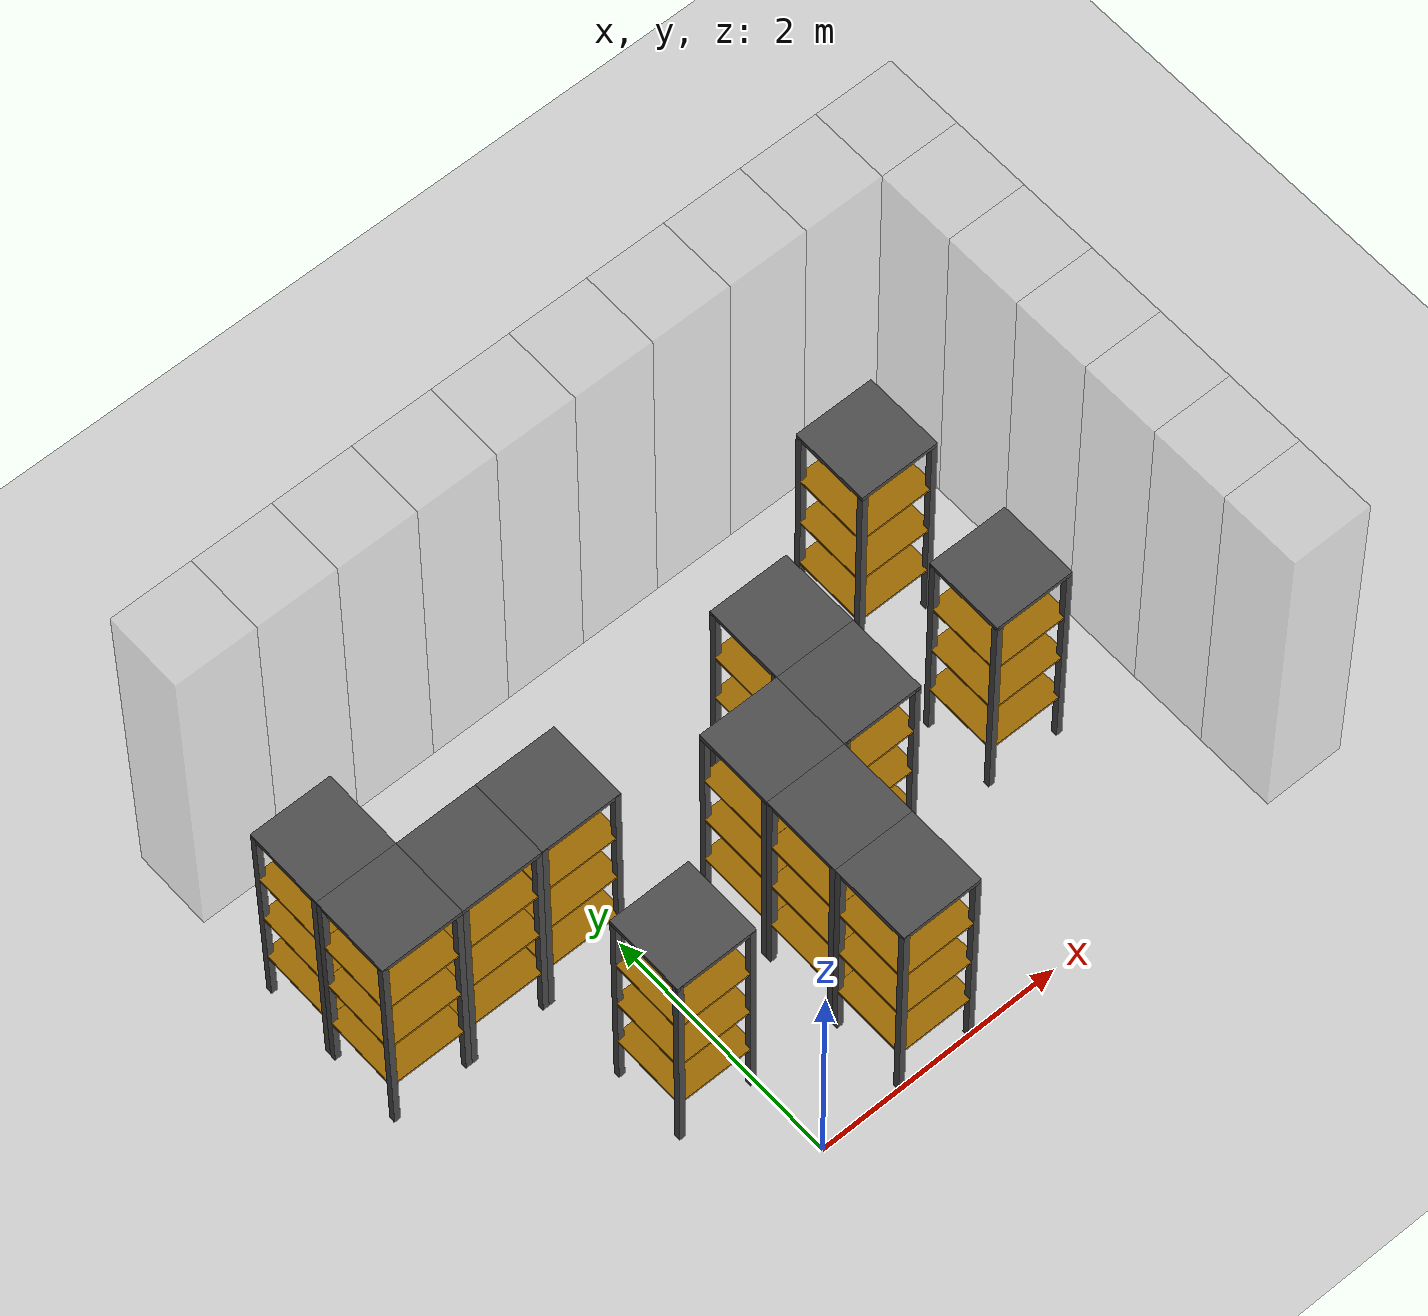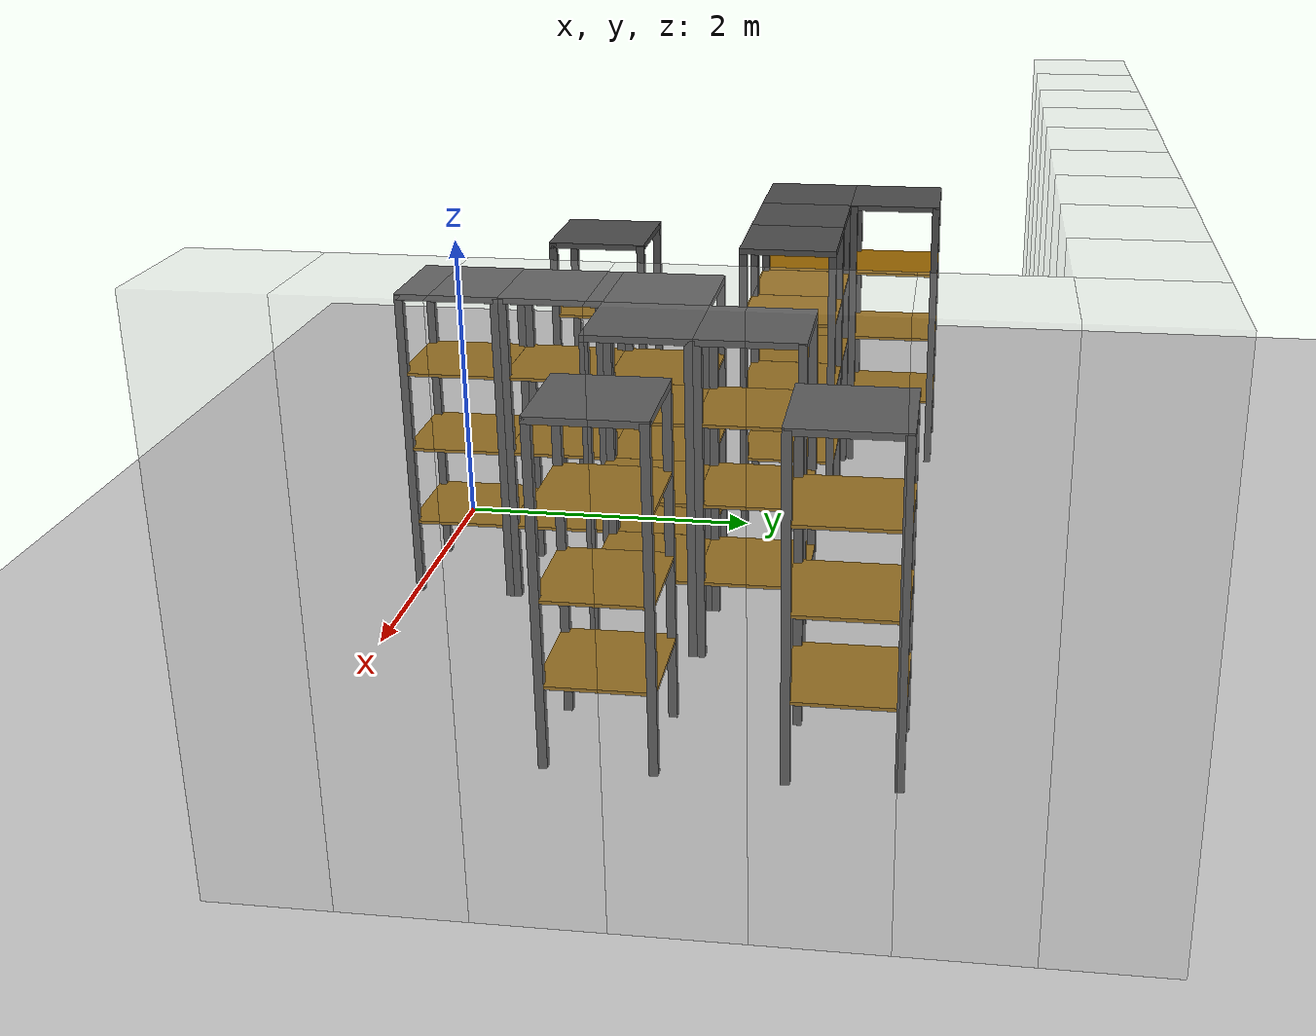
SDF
<sdf version="1.6">
 <world name="default">
  <model name="ground_plane">
   <static>1</static>
   <link name="link">
    <collision name="collision">
     <geometry><plane><normal>0 0 1</normal><size>100 100</size></plane></geometry>
     <surface><friction><ode><mu>100</mu><mu2>50</mu2></ode></friction></surface>
    </collision>
    <visual name="visual">
     <cast_shadows>0</cast_shadows>
     <geometry><plane><normal>0 0 1</normal><size>100 100</size></plane></geometry>
     <material>
      <script><uri>file://media/materials/scripts/gazebo.material</uri><name>Gazebo/Grey</name></script>
     </material>
    </visual>
   </link>
  </model>
  <model name="warehouse_shelf_7_8">
   <static>1</static>
   <link name="main_block">
    <pose>0 0 1.25 0 -0 0</pose>
    <collision name="collision"><geometry><box><size>0.65 0.65 1.5</size></box></geometry></collision>
   </link>
   <link name="leg_1">
    <pose>0.3 0.3 1 0 -0 0</pose>
    <collision name="collision"><geometry><box><size>0.05 0.05 2</size></box></geometry></collision>
    <visual name="visual">
     <geometry><box><size>0.05 0.05 2</size></box></geometry>
     <material><ambient>0.2 0.2 0.2 1</ambient><diffuse>0.3 0.3 0.3 1</diffuse></material>
    </visual>
   </link>
   <link name="leg_2">
    <pose>-0.3 0.3 1 0 -0 0</pose>
    <collision name="collision"><geometry><box><size>0.05 0.05 2</size></box></geometry></collision>
    <visual name="visual">
     <geometry><box><size>0.05 0.05 2</size></box></geometry>
     <material><ambient>0.2 0.2 0.2 1</ambient><diffuse>0.3 0.3 0.3 1</diffuse></material>
    </visual>
   </link>
   <link name="leg_3">
    <pose>-0.3 -0.3 1 0 -0 0</pose>
    <collision name="collision"><geometry><box><size>0.05 0.05 2</size></box></geometry></collision>
    <visual name="visual">
     <geometry><box><size>0.05 0.05 2</size></box></geometry>
     <material><ambient>0.2 0.2 0.2 1</ambient><diffuse>0.3 0.3 0.3 1</diffuse></material>
    </visual>
   </link>
   <link name="leg_4">
    <pose>0.3 -0.3 1 0 -0 0</pose>
    <collision name="collision"><geometry><box><size>0.05 0.05 2</size></box></geometry></collision>
    <visual name="visual">
     <geometry><box><size>0.05 0.05 2</size></box></geometry>
     <material><ambient>0.2 0.2 0.2 1</ambient><diffuse>0.3 0.3 0.3 1</diffuse></material>
    </visual>
   </link>
   <link name="shelf_0">
    <pose>0 0 0.49 0 -0 0</pose>
    <visual name="visual">
     <geometry><box><size>0.649 0.649 0.02</size></box></geometry>
     <material><ambient>0.2 0.05 0 1</ambient><diffuse>0.6 0.4 0 1</diffuse></material>
    </visual>
   </link>
   <link name="shelf_1">
    <pose>0 0 0.99 0 -0 0</pose>
    <visual name="visual">
     <geometry><box><size>0.649 0.649 0.02</size></box></geometry>
     <material><ambient>0.2 0.05 0 1</ambient><diffuse>0.6 0.4 0 1</diffuse></material>
    </visual>
   </link>
   <link name="shelf_2">
    <pose>0 0 1.49 0 -0 0</pose>
    <visual name="visual">
     <geometry><box><size>0.649 0.649 0.02</size></box></geometry>
     <material><ambient>0.2 0.05 0 1</ambient><diffuse>0.6 0.4 0 1</diffuse></material>
    </visual>
   </link>
   <link name="shelf_top">
    <pose>0 0 1.99 0 -0 0</pose>
    <visual name="visual">
     <geometry><box><size>0.65 0.65 0.04</size></box></geometry>
     <material><ambient>0.2 0.2 0.2 1</ambient><diffuse>0.3 0.3 0.3 1</diffuse></material>
    </visual>
   </link>
   <pose>0.975 0.325 0 0 -0 0</pose>
  </model>
  <model name="pole_7_13">
   <static>1</static>
   <link name="main_block">
    <pose>0 0 1.5 0 -0 0</pose>
    <collision name="collision"><geometry><box><size>0.65 0.65 3</size></box></geometry></collision>
    <visual name="visual">
     <geometry><box><size>0.65 0.65 3</size></box></geometry>
     <material><ambient>0.5 0.5 0.5 0.25</ambient><diffuse>0.75 0.75 0.75 0.25</diffuse></material>
    </visual>
   </link>
   <pose>4.225 0.325 0 0 -0 0</pose>
  </model>
  <model name="warehouse_shelf_8_6">
   <static>1</static>
   <link name="main_block">
    <pose>0 0 1.25 0 -0 0</pose>
    <collision name="collision"><geometry><box><size>0.65 0.65 1.5</size></box></geometry></collision>
   </link>
   <link name="leg_1">
    <pose>0.3 0.3 1 0 -0 0</pose>
    <collision name="collision"><geometry><box><size>0.05 0.05 2</size></box></geometry></collision>
    <visual name="visual">
     <geometry><box><size>0.05 0.05 2</size></box></geometry>
     <material><ambient>0.2 0.2 0.2 1</ambient><diffuse>0.3 0.3 0.3 1</diffuse></material>
    </visual>
   </link>
   <link name="leg_2">
    <pose>-0.3 0.3 1 0 -0 0</pose>
    <collision name="collision"><geometry><box><size>0.05 0.05 2</size></box></geometry></collision>
    <visual name="visual">
     <geometry><box><size>0.05 0.05 2</size></box></geometry>
     <material><ambient>0.2 0.2 0.2 1</ambient><diffuse>0.3 0.3 0.3 1</diffuse></material>
    </visual>
   </link>
   <link name="leg_3">
    <pose>-0.3 -0.3 1 0 -0 0</pose>
    <collision name="collision"><geometry><box><size>0.05 0.05 2</size></box></geometry></collision>
    <visual name="visual">
     <geometry><box><size>0.05 0.05 2</size></box></geometry>
     <material><ambient>0.2 0.2 0.2 1</ambient><diffuse>0.3 0.3 0.3 1</diffuse></material>
    </visual>
   </link>
   <link name="leg_4">
    <pose>0.3 -0.3 1 0 -0 0</pose>
    <collision name="collision"><geometry><box><size>0.05 0.05 2</size></box></geometry></collision>
    <visual name="visual">
     <geometry><box><size>0.05 0.05 2</size></box></geometry>
     <material><ambient>0.2 0.2 0.2 1</ambient><diffuse>0.3 0.3 0.3 1</diffuse></material>
    </visual>
   </link>
   <link name="shelf_0">
    <pose>0 0 0.49 0 -0 0</pose>
    <visual name="visual">
     <geometry><box><size>0.649 0.649 0.02</size></box></geometry>
     <material><ambient>0.2 0.05 0 1</ambient><diffuse>0.6 0.4 0 1</diffuse></material>
    </visual>
   </link>
   <link name="shelf_1">
    <pose>0 0 0.99 0 -0 0</pose>
    <visual name="visual">
     <geometry><box><size>0.649 0.649 0.02</size></box></geometry>
     <material><ambient>0.2 0.05 0 1</ambient><diffuse>0.6 0.4 0 1</diffuse></material>
    </visual>
   </link>
   <link name="shelf_2">
    <pose>0 0 1.49 0 -0 0</pose>
    <visual name="visual">
     <geometry><box><size>0.649 0.649 0.02</size></box></geometry>
     <material><ambient>0.2 0.05 0 1</ambient><diffuse>0.6 0.4 0 1</diffuse></material>
    </visual>
   </link>
   <link name="shelf_top">
    <pose>0 0 1.99 0 -0 0</pose>
    <visual name="visual">
     <geometry><box><size>0.65 0.65 0.04</size></box></geometry>
     <material><ambient>0.2 0.2 0.2 1</ambient><diffuse>0.3 0.3 0.3 1</diffuse></material>
    </visual>
   </link>
   <pose>-0.325 0.975 0 0 -0 0</pose>
  </model>
  <model name="warehouse_shelf_8_8">
   <static>1</static>
   <link name="main_block">
    <pose>0 0 1.25 0 -0 0</pose>
    <collision name="collision"><geometry><box><size>0.65 0.65 1.5</size></box></geometry></collision>
   </link>
   <link name="leg_1">
    <pose>0.3 0.3 1 0 -0 0</pose>
    <collision name="collision"><geometry><box><size>0.05 0.05 2</size></box></geometry></collision>
    <visual name="visual">
     <geometry><box><size>0.05 0.05 2</size></box></geometry>
     <material><ambient>0.2 0.2 0.2 1</ambient><diffuse>0.3 0.3 0.3 1</diffuse></material>
    </visual>
   </link>
   <link name="leg_2">
    <pose>-0.3 0.3 1 0 -0 0</pose>
    <collision name="collision"><geometry><box><size>0.05 0.05 2</size></box></geometry></collision>
    <visual name="visual">
     <geometry><box><size>0.05 0.05 2</size></box></geometry>
     <material><ambient>0.2 0.2 0.2 1</ambient><diffuse>0.3 0.3 0.3 1</diffuse></material>
    </visual>
   </link>
   <link name="leg_3">
    <pose>-0.3 -0.3 1 0 -0 0</pose>
    <collision name="collision"><geometry><box><size>0.05 0.05 2</size></box></geometry></collision>
    <visual name="visual">
     <geometry><box><size>0.05 0.05 2</size></box></geometry>
     <material><ambient>0.2 0.2 0.2 1</ambient><diffuse>0.3 0.3 0.3 1</diffuse></material>
    </visual>
   </link>
   <link name="leg_4">
    <pose>0.3 -0.3 1 0 -0 0</pose>
    <collision name="collision"><geometry><box><size>0.05 0.05 2</size></box></geometry></collision>
    <visual name="visual">
     <geometry><box><size>0.05 0.05 2</size></box></geometry>
     <material><ambient>0.2 0.2 0.2 1</ambient><diffuse>0.3 0.3 0.3 1</diffuse></material>
    </visual>
   </link>
   <link name="shelf_0">
    <pose>0 0 0.49 0 -0 0</pose>
    <visual name="visual">
     <geometry><box><size>0.649 0.649 0.02</size></box></geometry>
     <material><ambient>0.2 0.05 0 1</ambient><diffuse>0.6 0.4 0 1</diffuse></material>
    </visual>
   </link>
   <link name="shelf_1">
    <pose>0 0 0.99 0 -0 0</pose>
    <visual name="visual">
     <geometry><box><size>0.649 0.649 0.02</size></box></geometry>
     <material><ambient>0.2 0.05 0 1</ambient><diffuse>0.6 0.4 0 1</diffuse></material>
    </visual>
   </link>
   <link name="shelf_2">
    <pose>0 0 1.49 0 -0 0</pose>
    <visual name="visual">
     <geometry><box><size>0.649 0.649 0.02</size></box></geometry>
     <material><ambient>0.2 0.05 0 1</ambient><diffuse>0.6 0.4 0 1</diffuse></material>
    </visual>
   </link>
   <link name="shelf_top">
    <pose>0 0 1.99 0 -0 0</pose>
    <visual name="visual">
     <geometry><box><size>0.65 0.65 0.04</size></box></geometry>
     <material><ambient>0.2 0.2 0.2 1</ambient><diffuse>0.3 0.3 0.3 1</diffuse></material>
    </visual>
   </link>
   <pose>0.975 0.975 0 0 -0 0</pose>
  </model>
  <model name="pole_8_13">
   <static>1</static>
   <link name="main_block">
    <pose>0 0 1.5 0 -0 0</pose>
    <collision name="collision"><geometry><box><size>0.65 0.65 3</size></box></geometry></collision>
    <visual name="visual">
     <geometry><box><size>0.65 0.65 3</size></box></geometry>
     <material><ambient>0.5 0.5 0.5 0.25</ambient><diffuse>0.75 0.75 0.75 0.25</diffuse></material>
    </visual>
   </link>
   <pose>4.225 0.975 0 0 -0 0</pose>
  </model>
  <model name="warehouse_shelf_9_8">
   <static>1</static>
   <link name="main_block">
    <pose>0 0 1.25 0 -0 0</pose>
    <collision name="collision"><geometry><box><size>0.65 0.65 1.5</size></box></geometry></collision>
   </link>
   <link name="leg_1">
    <pose>0.3 0.3 1 0 -0 0</pose>
    <collision name="collision"><geometry><box><size>0.05 0.05 2</size></box></geometry></collision>
    <visual name="visual">
     <geometry><box><size>0.05 0.05 2</size></box></geometry>
     <material><ambient>0.2 0.2 0.2 1</ambient><diffuse>0.3 0.3 0.3 1</diffuse></material>
    </visual>
   </link>
   <link name="leg_2">
    <pose>-0.3 0.3 1 0 -0 0</pose>
    <collision name="collision"><geometry><box><size>0.05 0.05 2</size></box></geometry></collision>
    <visual name="visual">
     <geometry><box><size>0.05 0.05 2</size></box></geometry>
     <material><ambient>0.2 0.2 0.2 1</ambient><diffuse>0.3 0.3 0.3 1</diffuse></material>
    </visual>
   </link>
   <link name="leg_3">
    <pose>-0.3 -0.3 1 0 -0 0</pose>
    <collision name="collision"><geometry><box><size>0.05 0.05 2</size></box></geometry></collision>
    <visual name="visual">
     <geometry><box><size>0.05 0.05 2</size></box></geometry>
     <material><ambient>0.2 0.2 0.2 1</ambient><diffuse>0.3 0.3 0.3 1</diffuse></material>
    </visual>
   </link>
   <link name="leg_4">
    <pose>0.3 -0.3 1 0 -0 0</pose>
    <collision name="collision"><geometry><box><size>0.05 0.05 2</size></box></geometry></collision>
    <visual name="visual">
     <geometry><box><size>0.05 0.05 2</size></box></geometry>
     <material><ambient>0.2 0.2 0.2 1</ambient><diffuse>0.3 0.3 0.3 1</diffuse></material>
    </visual>
   </link>
   <link name="shelf_0">
    <pose>0 0 0.49 0 -0 0</pose>
    <visual name="visual">
     <geometry><box><size>0.649 0.649 0.02</size></box></geometry>
     <material><ambient>0.2 0.05 0 1</ambient><diffuse>0.6 0.4 0 1</diffuse></material>
    </visual>
   </link>
   <link name="shelf_1">
    <pose>0 0 0.99 0 -0 0</pose>
    <visual name="visual">
     <geometry><box><size>0.649 0.649 0.02</size></box></geometry>
     <material><ambient>0.2 0.05 0 1</ambient><diffuse>0.6 0.4 0 1</diffuse></material>
    </visual>
   </link>
   <link name="shelf_2">
    <pose>0 0 1.49 0 -0 0</pose>
    <visual name="visual">
     <geometry><box><size>0.649 0.649 0.02</size></box></geometry>
     <material><ambient>0.2 0.05 0 1</ambient><diffuse>0.6 0.4 0 1</diffuse></material>
    </visual>
   </link>
   <link name="shelf_top">
    <pose>0 0 1.99 0 -0 0</pose>
    <visual name="visual">
     <geometry><box><size>0.65 0.65 0.04</size></box></geometry>
     <material><ambient>0.2 0.2 0.2 1</ambient><diffuse>0.3 0.3 0.3 1</diffuse></material>
    </visual>
   </link>
   <pose>0.975 1.625 0 0 -0 0</pose>
  </model>
  <model name="warehouse_shelf_9_9">
   <static>1</static>
   <link name="main_block">
    <pose>0 0 1.25 0 -0 0</pose>
    <collision name="collision"><geometry><box><size>0.65 0.65 1.5</size></box></geometry></collision>
   </link>
   <link name="leg_1">
    <pose>0.3 0.3 1 0 -0 0</pose>
    <collision name="collision"><geometry><box><size>0.05 0.05 2</size></box></geometry></collision>
    <visual name="visual">
     <geometry><box><size>0.05 0.05 2</size></box></geometry>
     <material><ambient>0.2 0.2 0.2 1</ambient><diffuse>0.3 0.3 0.3 1</diffuse></material>
    </visual>
   </link>
   <link name="leg_2">
    <pose>-0.3 0.3 1 0 -0 0</pose>
    <collision name="collision"><geometry><box><size>0.05 0.05 2</size></box></geometry></collision>
    <visual name="visual">
     <geometry><box><size>0.05 0.05 2</size></box></geometry>
     <material><ambient>0.2 0.2 0.2 1</ambient><diffuse>0.3 0.3 0.3 1</diffuse></material>
    </visual>
   </link>
   <link name="leg_3">
    <pose>-0.3 -0.3 1 0 -0 0</pose>
    <collision name="collision"><geometry><box><size>0.05 0.05 2</size></box></geometry></collision>
    <visual name="visual">
     <geometry><box><size>0.05 0.05 2</size></box></geometry>
     <material><ambient>0.2 0.2 0.2 1</ambient><diffuse>0.3 0.3 0.3 1</diffuse></material>
    </visual>
   </link>
   <link name="leg_4">
    <pose>0.3 -0.3 1 0 -0 0</pose>
    <collision name="collision"><geometry><box><size>0.05 0.05 2</size></box></geometry></collision>
    <visual name="visual">
     <geometry><box><size>0.05 0.05 2</size></box></geometry>
     <material><ambient>0.2 0.2 0.2 1</ambient><diffuse>0.3 0.3 0.3 1</diffuse></material>
    </visual>
   </link>
   <link name="shelf_0">
    <pose>0 0 0.49 0 -0 0</pose>
    <visual name="visual">
     <geometry><box><size>0.649 0.649 0.02</size></box></geometry>
     <material><ambient>0.2 0.05 0 1</ambient><diffuse>0.6 0.4 0 1</diffuse></material>
    </visual>
   </link>
   <link name="shelf_1">
    <pose>0 0 0.99 0 -0 0</pose>
    <visual name="visual">
     <geometry><box><size>0.649 0.649 0.02</size></box></geometry>
     <material><ambient>0.2 0.05 0 1</ambient><diffuse>0.6 0.4 0 1</diffuse></material>
    </visual>
   </link>
   <link name="shelf_2">
    <pose>0 0 1.49 0 -0 0</pose>
    <visual name="visual">
     <geometry><box><size>0.649 0.649 0.02</size></box></geometry>
     <material><ambient>0.2 0.05 0 1</ambient><diffuse>0.6 0.4 0 1</diffuse></material>
    </visual>
   </link>
   <link name="shelf_top">
    <pose>0 0 1.99 0 -0 0</pose>
    <visual name="visual">
     <geometry><box><size>0.65 0.65 0.04</size></box></geometry>
     <material><ambient>0.2 0.2 0.2 1</ambient><diffuse>0.3 0.3 0.3 1</diffuse></material>
    </visual>
   </link>
   <pose>1.625 1.625 0 0 -0 0</pose>
  </model>
  <model name="warehouse_shelf_9_11">
   <static>1</static>
   <link name="main_block">
    <pose>0 0 1.25 0 -0 0</pose>
    <collision name="collision"><geometry><box><size>0.65 0.65 1.5</size></box></geometry></collision>
   </link>
   <link name="leg_1">
    <pose>0.3 0.3 1 0 -0 0</pose>
    <collision name="collision"><geometry><box><size>0.05 0.05 2</size></box></geometry></collision>
    <visual name="visual">
     <geometry><box><size>0.05 0.05 2</size></box></geometry>
     <material><ambient>0.2 0.2 0.2 1</ambient><diffuse>0.3 0.3 0.3 1</diffuse></material>
    </visual>
   </link>
   <link name="leg_2">
    <pose>-0.3 0.3 1 0 -0 0</pose>
    <collision name="collision"><geometry><box><size>0.05 0.05 2</size></box></geometry></collision>
    <visual name="visual">
     <geometry><box><size>0.05 0.05 2</size></box></geometry>
     <material><ambient>0.2 0.2 0.2 1</ambient><diffuse>0.3 0.3 0.3 1</diffuse></material>
    </visual>
   </link>
   <link name="leg_3">
    <pose>-0.3 -0.3 1 0 -0 0</pose>
    <collision name="collision"><geometry><box><size>0.05 0.05 2</size></box></geometry></collision>
    <visual name="visual">
     <geometry><box><size>0.05 0.05 2</size></box></geometry>
     <material><ambient>0.2 0.2 0.2 1</ambient><diffuse>0.3 0.3 0.3 1</diffuse></material>
    </visual>
   </link>
   <link name="leg_4">
    <pose>0.3 -0.3 1 0 -0 0</pose>
    <collision name="collision"><geometry><box><size>0.05 0.05 2</size></box></geometry></collision>
    <visual name="visual">
     <geometry><box><size>0.05 0.05 2</size></box></geometry>
     <material><ambient>0.2 0.2 0.2 1</ambient><diffuse>0.3 0.3 0.3 1</diffuse></material>
    </visual>
   </link>
   <link name="shelf_0">
    <pose>0 0 0.49 0 -0 0</pose>
    <visual name="visual">
     <geometry><box><size>0.649 0.649 0.02</size></box></geometry>
     <material><ambient>0.2 0.05 0 1</ambient><diffuse>0.6 0.4 0 1</diffuse></material>
    </visual>
   </link>
   <link name="shelf_1">
    <pose>0 0 0.99 0 -0 0</pose>
    <visual name="visual">
     <geometry><box><size>0.649 0.649 0.02</size></box></geometry>
     <material><ambient>0.2 0.05 0 1</ambient><diffuse>0.6 0.4 0 1</diffuse></material>
    </visual>
   </link>
   <link name="shelf_2">
    <pose>0 0 1.49 0 -0 0</pose>
    <visual name="visual">
     <geometry><box><size>0.649 0.649 0.02</size></box></geometry>
     <material><ambient>0.2 0.05 0 1</ambient><diffuse>0.6 0.4 0 1</diffuse></material>
    </visual>
   </link>
   <link name="shelf_top">
    <pose>0 0 1.99 0 -0 0</pose>
    <visual name="visual">
     <geometry><box><size>0.65 0.65 0.04</size></box></geometry>
     <material><ambient>0.2 0.2 0.2 1</ambient><diffuse>0.3 0.3 0.3 1</diffuse></material>
    </visual>
   </link>
   <pose>2.925 1.625 0 0 -0 0</pose>
  </model>
  <model name="pole_9_13">
   <static>1</static>
   <link name="main_block">
    <pose>0 0 1.5 0 -0 0</pose>
    <collision name="collision"><geometry><box><size>0.65 0.65 3</size></box></geometry></collision>
    <visual name="visual">
     <geometry><box><size>0.65 0.65 3</size></box></geometry>
     <material><ambient>0.5 0.5 0.5 0.25</ambient><diffuse>0.75 0.75 0.75 0.25</diffuse></material>
    </visual>
   </link>
   <pose>4.225 1.625 0 0 -0 0</pose>
  </model>
  <model name="warehouse_shelf_10_4">
   <static>1</static>
   <link name="main_block">
    <pose>0 0 1.25 0 -0 0</pose>
    <collision name="collision"><geometry><box><size>0.65 0.65 1.5</size></box></geometry></collision>
   </link>
   <link name="leg_1">
    <pose>0.3 0.3 1 0 -0 0</pose>
    <collision name="collision"><geometry><box><size>0.05 0.05 2</size></box></geometry></collision>
    <visual name="visual">
     <geometry><box><size>0.05 0.05 2</size></box></geometry>
     <material><ambient>0.2 0.2 0.2 1</ambient><diffuse>0.3 0.3 0.3 1</diffuse></material>
    </visual>
   </link>
   <link name="leg_2">
    <pose>-0.3 0.3 1 0 -0 0</pose>
    <collision name="collision"><geometry><box><size>0.05 0.05 2</size></box></geometry></collision>
    <visual name="visual">
     <geometry><box><size>0.05 0.05 2</size></box></geometry>
     <material><ambient>0.2 0.2 0.2 1</ambient><diffuse>0.3 0.3 0.3 1</diffuse></material>
    </visual>
   </link>
   <link name="leg_3">
    <pose>-0.3 -0.3 1 0 -0 0</pose>
    <collision name="collision"><geometry><box><size>0.05 0.05 2</size></box></geometry></collision>
    <visual name="visual">
     <geometry><box><size>0.05 0.05 2</size></box></geometry>
     <material><ambient>0.2 0.2 0.2 1</ambient><diffuse>0.3 0.3 0.3 1</diffuse></material>
    </visual>
   </link>
   <link name="leg_4">
    <pose>0.3 -0.3 1 0 -0 0</pose>
    <collision name="collision"><geometry><box><size>0.05 0.05 2</size></box></geometry></collision>
    <visual name="visual">
     <geometry><box><size>0.05 0.05 2</size></box></geometry>
     <material><ambient>0.2 0.2 0.2 1</ambient><diffuse>0.3 0.3 0.3 1</diffuse></material>
    </visual>
   </link>
   <link name="shelf_0">
    <pose>0 0 0.49 0 -0 0</pose>
    <visual name="visual">
     <geometry><box><size>0.649 0.649 0.02</size></box></geometry>
     <material><ambient>0.2 0.05 0 1</ambient><diffuse>0.6 0.4 0 1</diffuse></material>
    </visual>
   </link>
   <link name="shelf_1">
    <pose>0 0 0.99 0 -0 0</pose>
    <visual name="visual">
     <geometry><box><size>0.649 0.649 0.02</size></box></geometry>
     <material><ambient>0.2 0.05 0 1</ambient><diffuse>0.6 0.4 0 1</diffuse></material>
    </visual>
   </link>
   <link name="shelf_2">
    <pose>0 0 1.49 0 -0 0</pose>
    <visual name="visual">
     <geometry><box><size>0.649 0.649 0.02</size></box></geometry>
     <material><ambient>0.2 0.05 0 1</ambient><diffuse>0.6 0.4 0 1</diffuse></material>
    </visual>
   </link>
   <link name="shelf_top">
    <pose>0 0 1.99 0 -0 0</pose>
    <visual name="visual">
     <geometry><box><size>0.65 0.65 0.04</size></box></geometry>
     <material><ambient>0.2 0.2 0.2 1</ambient><diffuse>0.3 0.3 0.3 1</diffuse></material>
    </visual>
   </link>
   <pose>-1.625 2.275 0 0 -0 0</pose>
  </model>
  <model name="warehouse_shelf_10_5">
   <static>1</static>
   <link name="main_block">
    <pose>0 0 1.25 0 -0 0</pose>
    <collision name="collision"><geometry><box><size>0.65 0.65 1.5</size></box></geometry></collision>
   </link>
   <link name="leg_1">
    <pose>0.3 0.3 1 0 -0 0</pose>
    <collision name="collision"><geometry><box><size>0.05 0.05 2</size></box></geometry></collision>
    <visual name="visual">
     <geometry><box><size>0.05 0.05 2</size></box></geometry>
     <material><ambient>0.2 0.2 0.2 1</ambient><diffuse>0.3 0.3 0.3 1</diffuse></material>
    </visual>
   </link>
   <link name="leg_2">
    <pose>-0.3 0.3 1 0 -0 0</pose>
    <collision name="collision"><geometry><box><size>0.05 0.05 2</size></box></geometry></collision>
    <visual name="visual">
     <geometry><box><size>0.05 0.05 2</size></box></geometry>
     <material><ambient>0.2 0.2 0.2 1</ambient><diffuse>0.3 0.3 0.3 1</diffuse></material>
    </visual>
   </link>
   <link name="leg_3">
    <pose>-0.3 -0.3 1 0 -0 0</pose>
    <collision name="collision"><geometry><box><size>0.05 0.05 2</size></box></geometry></collision>
    <visual name="visual">
     <geometry><box><size>0.05 0.05 2</size></box></geometry>
     <material><ambient>0.2 0.2 0.2 1</ambient><diffuse>0.3 0.3 0.3 1</diffuse></material>
    </visual>
   </link>
   <link name="leg_4">
    <pose>0.3 -0.3 1 0 -0 0</pose>
    <collision name="collision"><geometry><box><size>0.05 0.05 2</size></box></geometry></collision>
    <visual name="visual">
     <geometry><box><size>0.05 0.05 2</size></box></geometry>
     <material><ambient>0.2 0.2 0.2 1</ambient><diffuse>0.3 0.3 0.3 1</diffuse></material>
    </visual>
   </link>
   <link name="shelf_0">
    <pose>0 0 0.49 0 -0 0</pose>
    <visual name="visual">
     <geometry><box><size>0.649 0.649 0.02</size></box></geometry>
     <material><ambient>0.2 0.05 0 1</ambient><diffuse>0.6 0.4 0 1</diffuse></material>
    </visual>
   </link>
   <link name="shelf_1">
    <pose>0 0 0.99 0 -0 0</pose>
    <visual name="visual">
     <geometry><box><size>0.649 0.649 0.02</size></box></geometry>
     <material><ambient>0.2 0.05 0 1</ambient><diffuse>0.6 0.4 0 1</diffuse></material>
    </visual>
   </link>
   <link name="shelf_2">
    <pose>0 0 1.49 0 -0 0</pose>
    <visual name="visual">
     <geometry><box><size>0.649 0.649 0.02</size></box></geometry>
     <material><ambient>0.2 0.05 0 1</ambient><diffuse>0.6 0.4 0 1</diffuse></material>
    </visual>
   </link>
   <link name="shelf_top">
    <pose>0 0 1.99 0 -0 0</pose>
    <visual name="visual">
     <geometry><box><size>0.65 0.65 0.04</size></box></geometry>
     <material><ambient>0.2 0.2 0.2 1</ambient><diffuse>0.3 0.3 0.3 1</diffuse></material>
    </visual>
   </link>
   <pose>-0.975 2.275 0 0 -0 0</pose>
  </model>
  <model name="warehouse_shelf_10_6">
   <static>1</static>
   <link name="main_block">
    <pose>0 0 1.25 0 -0 0</pose>
    <collision name="collision"><geometry><box><size>0.65 0.65 1.5</size></box></geometry></collision>
   </link>
   <link name="leg_1">
    <pose>0.3 0.3 1 0 -0 0</pose>
    <collision name="collision"><geometry><box><size>0.05 0.05 2</size></box></geometry></collision>
    <visual name="visual">
     <geometry><box><size>0.05 0.05 2</size></box></geometry>
     <material><ambient>0.2 0.2 0.2 1</ambient><diffuse>0.3 0.3 0.3 1</diffuse></material>
    </visual>
   </link>
   <link name="leg_2">
    <pose>-0.3 0.3 1 0 -0 0</pose>
    <collision name="collision"><geometry><box><size>0.05 0.05 2</size></box></geometry></collision>
    <visual name="visual">
     <geometry><box><size>0.05 0.05 2</size></box></geometry>
     <material><ambient>0.2 0.2 0.2 1</ambient><diffuse>0.3 0.3 0.3 1</diffuse></material>
    </visual>
   </link>
   <link name="leg_3">
    <pose>-0.3 -0.3 1 0 -0 0</pose>
    <collision name="collision"><geometry><box><size>0.05 0.05 2</size></box></geometry></collision>
    <visual name="visual">
     <geometry><box><size>0.05 0.05 2</size></box></geometry>
     <material><ambient>0.2 0.2 0.2 1</ambient><diffuse>0.3 0.3 0.3 1</diffuse></material>
    </visual>
   </link>
   <link name="leg_4">
    <pose>0.3 -0.3 1 0 -0 0</pose>
    <collision name="collision"><geometry><box><size>0.05 0.05 2</size></box></geometry></collision>
    <visual name="visual">
     <geometry><box><size>0.05 0.05 2</size></box></geometry>
     <material><ambient>0.2 0.2 0.2 1</ambient><diffuse>0.3 0.3 0.3 1</diffuse></material>
    </visual>
   </link>
   <link name="shelf_0">
    <pose>0 0 0.49 0 -0 0</pose>
    <visual name="visual">
     <geometry><box><size>0.649 0.649 0.02</size></box></geometry>
     <material><ambient>0.2 0.05 0 1</ambient><diffuse>0.6 0.4 0 1</diffuse></material>
    </visual>
   </link>
   <link name="shelf_1">
    <pose>0 0 0.99 0 -0 0</pose>
    <visual name="visual">
     <geometry><box><size>0.649 0.649 0.02</size></box></geometry>
     <material><ambient>0.2 0.05 0 1</ambient><diffuse>0.6 0.4 0 1</diffuse></material>
    </visual>
   </link>
   <link name="shelf_2">
    <pose>0 0 1.49 0 -0 0</pose>
    <visual name="visual">
     <geometry><box><size>0.649 0.649 0.02</size></box></geometry>
     <material><ambient>0.2 0.05 0 1</ambient><diffuse>0.6 0.4 0 1</diffuse></material>
    </visual>
   </link>
   <link name="shelf_top">
    <pose>0 0 1.99 0 -0 0</pose>
    <visual name="visual">
     <geometry><box><size>0.65 0.65 0.04</size></box></geometry>
     <material><ambient>0.2 0.2 0.2 1</ambient><diffuse>0.3 0.3 0.3 1</diffuse></material>
    </visual>
   </link>
   <pose>-0.325 2.275 0 0 -0 0</pose>
  </model>
  <model name="warehouse_shelf_10_9">
   <static>1</static>
   <link name="main_block">
    <pose>0 0 1.25 0 -0 0</pose>
    <collision name="collision"><geometry><box><size>0.65 0.65 1.5</size></box></geometry></collision>
   </link>
   <link name="leg_1">
    <pose>0.3 0.3 1 0 -0 0</pose>
    <collision name="collision"><geometry><box><size>0.05 0.05 2</size></box></geometry></collision>
    <visual name="visual">
     <geometry><box><size>0.05 0.05 2</size></box></geometry>
     <material><ambient>0.2 0.2 0.2 1</ambient><diffuse>0.3 0.3 0.3 1</diffuse></material>
    </visual>
   </link>
   <link name="leg_2">
    <pose>-0.3 0.3 1 0 -0 0</pose>
    <collision name="collision"><geometry><box><size>0.05 0.05 2</size></box></geometry></collision>
    <visual name="visual">
     <geometry><box><size>0.05 0.05 2</size></box></geometry>
     <material><ambient>0.2 0.2 0.2 1</ambient><diffuse>0.3 0.3 0.3 1</diffuse></material>
    </visual>
   </link>
   <link name="leg_3">
    <pose>-0.3 -0.3 1 0 -0 0</pose>
    <collision name="collision"><geometry><box><size>0.05 0.05 2</size></box></geometry></collision>
    <visual name="visual">
     <geometry><box><size>0.05 0.05 2</size></box></geometry>
     <material><ambient>0.2 0.2 0.2 1</ambient><diffuse>0.3 0.3 0.3 1</diffuse></material>
    </visual>
   </link>
   <link name="leg_4">
    <pose>0.3 -0.3 1 0 -0 0</pose>
    <collision name="collision"><geometry><box><size>0.05 0.05 2</size></box></geometry></collision>
    <visual name="visual">
     <geometry><box><size>0.05 0.05 2</size></box></geometry>
     <material><ambient>0.2 0.2 0.2 1</ambient><diffuse>0.3 0.3 0.3 1</diffuse></material>
    </visual>
   </link>
   <link name="shelf_0">
    <pose>0 0 0.49 0 -0 0</pose>
    <visual name="visual">
     <geometry><box><size>0.649 0.649 0.02</size></box></geometry>
     <material><ambient>0.2 0.05 0 1</ambient><diffuse>0.6 0.4 0 1</diffuse></material>
    </visual>
   </link>
   <link name="shelf_1">
    <pose>0 0 0.99 0 -0 0</pose>
    <visual name="visual">
     <geometry><box><size>0.649 0.649 0.02</size></box></geometry>
     <material><ambient>0.2 0.05 0 1</ambient><diffuse>0.6 0.4 0 1</diffuse></material>
    </visual>
   </link>
   <link name="shelf_2">
    <pose>0 0 1.49 0 -0 0</pose>
    <visual name="visual">
     <geometry><box><size>0.649 0.649 0.02</size></box></geometry>
     <material><ambient>0.2 0.05 0 1</ambient><diffuse>0.6 0.4 0 1</diffuse></material>
    </visual>
   </link>
   <link name="shelf_top">
    <pose>0 0 1.99 0 -0 0</pose>
    <visual name="visual">
     <geometry><box><size>0.65 0.65 0.04</size></box></geometry>
     <material><ambient>0.2 0.2 0.2 1</ambient><diffuse>0.3 0.3 0.3 1</diffuse></material>
    </visual>
   </link>
   <pose>1.625 2.275 0 0 -0 0</pose>
  </model>
  <model name="pole_10_13">
   <static>1</static>
   <link name="main_block">
    <pose>0 0 1.5 0 -0 0</pose>
    <collision name="collision"><geometry><box><size>0.65 0.65 3</size></box></geometry></collision>
    <visual name="visual">
     <geometry><box><size>0.65 0.65 3</size></box></geometry>
     <material><ambient>0.5 0.5 0.5 0.25</ambient><diffuse>0.75 0.75 0.75 0.25</diffuse></material>
    </visual>
   </link>
   <pose>4.225 2.275 0 0 -0 0</pose>
  </model>
  <model name="warehouse_shelf_11_4">
   <static>1</static>
   <link name="main_block">
    <pose>0 0 1.25 0 -0 0</pose>
    <collision name="collision"><geometry><box><size>0.65 0.65 1.5</size></box></geometry></collision>
   </link>
   <link name="leg_1">
    <pose>0.3 0.3 1 0 -0 0</pose>
    <collision name="collision"><geometry><box><size>0.05 0.05 2</size></box></geometry></collision>
    <visual name="visual">
     <geometry><box><size>0.05 0.05 2</size></box></geometry>
     <material><ambient>0.2 0.2 0.2 1</ambient><diffuse>0.3 0.3 0.3 1</diffuse></material>
    </visual>
   </link>
   <link name="leg_2">
    <pose>-0.3 0.3 1 0 -0 0</pose>
    <collision name="collision"><geometry><box><size>0.05 0.05 2</size></box></geometry></collision>
    <visual name="visual">
     <geometry><box><size>0.05 0.05 2</size></box></geometry>
     <material><ambient>0.2 0.2 0.2 1</ambient><diffuse>0.3 0.3 0.3 1</diffuse></material>
    </visual>
   </link>
   <link name="leg_3">
    <pose>-0.3 -0.3 1 0 -0 0</pose>
    <collision name="collision"><geometry><box><size>0.05 0.05 2</size></box></geometry></collision>
    <visual name="visual">
     <geometry><box><size>0.05 0.05 2</size></box></geometry>
     <material><ambient>0.2 0.2 0.2 1</ambient><diffuse>0.3 0.3 0.3 1</diffuse></material>
    </visual>
   </link>
   <link name="leg_4">
    <pose>0.3 -0.3 1 0 -0 0</pose>
    <collision name="collision"><geometry><box><size>0.05 0.05 2</size></box></geometry></collision>
    <visual name="visual">
     <geometry><box><size>0.05 0.05 2</size></box></geometry>
     <material><ambient>0.2 0.2 0.2 1</ambient><diffuse>0.3 0.3 0.3 1</diffuse></material>
    </visual>
   </link>
   <link name="shelf_0">
    <pose>0 0 0.49 0 -0 0</pose>
    <visual name="visual">
     <geometry><box><size>0.649 0.649 0.02</size></box></geometry>
     <material><ambient>0.2 0.05 0 1</ambient><diffuse>0.6 0.4 0 1</diffuse></material>
    </visual>
   </link>
   <link name="shelf_1">
    <pose>0 0 0.99 0 -0 0</pose>
    <visual name="visual">
     <geometry><box><size>0.649 0.649 0.02</size></box></geometry>
     <material><ambient>0.2 0.05 0 1</ambient><diffuse>0.6 0.4 0 1</diffuse></material>
    </visual>
   </link>
   <link name="shelf_2">
    <pose>0 0 1.49 0 -0 0</pose>
    <visual name="visual">
     <geometry><box><size>0.649 0.649 0.02</size></box></geometry>
     <material><ambient>0.2 0.05 0 1</ambient><diffuse>0.6 0.4 0 1</diffuse></material>
    </visual>
   </link>
   <link name="shelf_top">
    <pose>0 0 1.99 0 -0 0</pose>
    <visual name="visual">
     <geometry><box><size>0.65 0.65 0.04</size></box></geometry>
     <material><ambient>0.2 0.2 0.2 1</ambient><diffuse>0.3 0.3 0.3 1</diffuse></material>
    </visual>
   </link>
   <pose>-1.625 2.925 0 0 -0 0</pose>
  </model>
  <model name="warehouse_shelf_11_11">
   <static>1</static>
   <link name="main_block">
    <pose>0 0 1.25 0 -0 0</pose>
    <collision name="collision"><geometry><box><size>0.65 0.65 1.5</size></box></geometry></collision>
   </link>
   <link name="leg_1">
    <pose>0.3 0.3 1 0 -0 0</pose>
    <collision name="collision"><geometry><box><size>0.05 0.05 2</size></box></geometry></collision>
    <visual name="visual">
     <geometry><box><size>0.05 0.05 2</size></box></geometry>
     <material><ambient>0.2 0.2 0.2 1</ambient><diffuse>0.3 0.3 0.3 1</diffuse></material>
    </visual>
   </link>
   <link name="leg_2">
    <pose>-0.3 0.3 1 0 -0 0</pose>
    <collision name="collision"><geometry><box><size>0.05 0.05 2</size></box></geometry></collision>
    <visual name="visual">
     <geometry><box><size>0.05 0.05 2</size></box></geometry>
     <material><ambient>0.2 0.2 0.2 1</ambient><diffuse>0.3 0.3 0.3 1</diffuse></material>
    </visual>
   </link>
   <link name="leg_3">
    <pose>-0.3 -0.3 1 0 -0 0</pose>
    <collision name="collision"><geometry><box><size>0.05 0.05 2</size></box></geometry></collision>
    <visual name="visual">
     <geometry><box><size>0.05 0.05 2</size></box></geometry>
     <material><ambient>0.2 0.2 0.2 1</ambient><diffuse>0.3 0.3 0.3 1</diffuse></material>
    </visual>
   </link>
   <link name="leg_4">
    <pose>0.3 -0.3 1 0 -0 0</pose>
    <collision name="collision"><geometry><box><size>0.05 0.05 2</size></box></geometry></collision>
    <visual name="visual">
     <geometry><box><size>0.05 0.05 2</size></box></geometry>
     <material><ambient>0.2 0.2 0.2 1</ambient><diffuse>0.3 0.3 0.3 1</diffuse></material>
    </visual>
   </link>
   <link name="shelf_0">
    <pose>0 0 0.49 0 -0 0</pose>
    <visual name="visual">
     <geometry><box><size>0.649 0.649 0.02</size></box></geometry>
     <material><ambient>0.2 0.05 0 1</ambient><diffuse>0.6 0.4 0 1</diffuse></material>
    </visual>
   </link>
   <link name="shelf_1">
    <pose>0 0 0.99 0 -0 0</pose>
    <visual name="visual">
     <geometry><box><size>0.649 0.649 0.02</size></box></geometry>
     <material><ambient>0.2 0.05 0 1</ambient><diffuse>0.6 0.4 0 1</diffuse></material>
    </visual>
   </link>
   <link name="shelf_2">
    <pose>0 0 1.49 0 -0 0</pose>
    <visual name="visual">
     <geometry><box><size>0.649 0.649 0.02</size></box></geometry>
     <material><ambient>0.2 0.05 0 1</ambient><diffuse>0.6 0.4 0 1</diffuse></material>
    </visual>
   </link>
   <link name="shelf_top">
    <pose>0 0 1.99 0 -0 0</pose>
    <visual name="visual">
     <geometry><box><size>0.65 0.65 0.04</size></box></geometry>
     <material><ambient>0.2 0.2 0.2 1</ambient><diffuse>0.3 0.3 0.3 1</diffuse></material>
    </visual>
   </link>
   <pose>2.925 2.925 0 0 -0 0</pose>
  </model>
  <model name="pole_11_13">
   <static>1</static>
   <link name="main_block">
    <pose>0 0 1.5 0 -0 0</pose>
    <collision name="collision"><geometry><box><size>0.65 0.65 3</size></box></geometry></collision>
    <visual name="visual">
     <geometry><box><size>0.65 0.65 3</size></box></geometry>
     <material><ambient>0.5 0.5 0.5 0.25</ambient><diffuse>0.75 0.75 0.75 0.25</diffuse></material>
    </visual>
   </link>
   <pose>4.225 2.925 0 0 -0 0</pose>
  </model>
  <model name="pole_12_13">
   <static>1</static>
   <link name="main_block">
    <pose>0 0 1.5 0 -0 0</pose>
    <collision name="collision"><geometry><box><size>0.65 0.65 3</size></box></geometry></collision>
    <visual name="visual">
     <geometry><box><size>0.65 0.65 3</size></box></geometry>
     <material><ambient>0.5 0.5 0.5 0.25</ambient><diffuse>0.75 0.75 0.75 0.25</diffuse></material>
    </visual>
   </link>
   <pose>4.225 3.575 0 0 -0 0</pose>
  </model>
  <model name="pole_13_4">
   <static>1</static>
   <link name="main_block">
    <pose>0 0 1.5 0 -0 0</pose>
    <collision name="collision"><geometry><box><size>0.65 0.65 3</size></box></geometry></collision>
    <visual name="visual">
     <geometry><box><size>0.65 0.65 3</size></box></geometry>
     <material><ambient>0.5 0.5 0.5 0.25</ambient><diffuse>0.75 0.75 0.75 0.25</diffuse></material>
    </visual>
   </link>
   <pose>-1.625 4.225 0 0 -0 0</pose>
  </model>
  <model name="pole_13_5">
   <static>1</static>
   <link name="main_block">
    <pose>0 0 1.5 0 -0 0</pose>
    <collision name="collision"><geometry><box><size>0.65 0.65 3</size></box></geometry></collision>
    <visual name="visual">
     <geometry><box><size>0.65 0.65 3</size></box></geometry>
     <material><ambient>0.5 0.5 0.5 0.25</ambient><diffuse>0.75 0.75 0.75 0.25</diffuse></material>
    </visual>
   </link>
   <pose>-0.975 4.225 0 0 -0 0</pose>
  </model>
  <model name="pole_13_6">
   <static>1</static>
   <link name="main_block">
    <pose>0 0 1.5 0 -0 0</pose>
    <collision name="collision"><geometry><box><size>0.65 0.65 3</size></box></geometry></collision>
    <visual name="visual">
     <geometry><box><size>0.65 0.65 3</size></box></geometry>
     <material><ambient>0.5 0.5 0.5 0.25</ambient><diffuse>0.75 0.75 0.75 0.25</diffuse></material>
    </visual>
   </link>
   <pose>-0.325 4.225 0 0 -0 0</pose>
  </model>
  <model name="pole_13_7">
   <static>1</static>
   <link name="main_block">
    <pose>0 0 1.5 0 -0 0</pose>
    <collision name="collision"><geometry><box><size>0.65 0.65 3</size></box></geometry></collision>
    <visual name="visual">
     <geometry><box><size>0.65 0.65 3</size></box></geometry>
     <material><ambient>0.5 0.5 0.5 0.25</ambient><diffuse>0.75 0.75 0.75 0.25</diffuse></material>
    </visual>
   </link>
   <pose>0.325 4.225 0 0 -0 0</pose>
  </model>
  <model name="pole_13_8">
   <static>1</static>
   <link name="main_block">
    <pose>0 0 1.5 0 -0 0</pose>
    <collision name="collision"><geometry><box><size>0.65 0.65 3</size></box></geometry></collision>
    <visual name="visual">
     <geometry><box><size>0.65 0.65 3</size></box></geometry>
     <material><ambient>0.5 0.5 0.5 0.25</ambient><diffuse>0.75 0.75 0.75 0.25</diffuse></material>
    </visual>
   </link>
   <pose>0.975 4.225 0 0 -0 0</pose>
  </model>
  <model name="pole_13_9">
   <static>1</static>
   <link name="main_block">
    <pose>0 0 1.5 0 -0 0</pose>
    <collision name="collision"><geometry><box><size>0.65 0.65 3</size></box></geometry></collision>
    <visual name="visual">
     <geometry><box><size>0.65 0.65 3</size></box></geometry>
     <material><ambient>0.5 0.5 0.5 0.25</ambient><diffuse>0.75 0.75 0.75 0.25</diffuse></material>
    </visual>
   </link>
   <pose>1.625 4.225 0 0 -0 0</pose>
  </model>
  <model name="pole_13_10">
   <static>1</static>
   <link name="main_block">
    <pose>0 0 1.5 0 -0 0</pose>
    <collision name="collision"><geometry><box><size>0.65 0.65 3</size></box></geometry></collision>
    <visual name="visual">
     <geometry><box><size>0.65 0.65 3</size></box></geometry>
     <material><ambient>0.5 0.5 0.5 0.25</ambient><diffuse>0.75 0.75 0.75 0.25</diffuse></material>
    </visual>
   </link>
   <pose>2.275 4.225 0 0 -0 0</pose>
  </model>
  <model name="pole_13_11">
   <static>1</static>
   <link name="main_block">
    <pose>0 0 1.5 0 -0 0</pose>
    <collision name="collision"><geometry><box><size>0.65 0.65 3</size></box></geometry></collision>
    <visual name="visual">
     <geometry><box><size>0.65 0.65 3</size></box></geometry>
     <material><ambient>0.5 0.5 0.5 0.25</ambient><diffuse>0.75 0.75 0.75 0.25</diffuse></material>
    </visual>
   </link>
   <pose>2.925 4.225 0 0 -0 0</pose>
  </model>
  <model name="pole_13_12">
   <static>1</static>
   <link name="main_block">
    <pose>0 0 1.5 0 -0 0</pose>
    <collision name="collision"><geometry><box><size>0.65 0.65 3</size></box></geometry></collision>
    <visual name="visual">
     <geometry><box><size>0.65 0.65 3</size></box></geometry>
     <material><ambient>0.5 0.5 0.5 0.25</ambient><diffuse>0.75 0.75 0.75 0.25</diffuse></material>
    </visual>
   </link>
   <pose>3.575 4.225 0 0 -0 0</pose>
  </model>
  <model name="pole_13_13">
   <static>1</static>
   <link name="main_block">
    <pose>0 0 1.5 0 -0 0</pose>
    <collision name="collision"><geometry><box><size>0.65 0.65 3</size></box></geometry></collision>
    <visual name="visual">
     <geometry><box><size>0.65 0.65 3</size></box></geometry>
     <material><ambient>0.5 0.5 0.5 0.25</ambient><diffuse>0.75 0.75 0.75 0.25</diffuse></material>
    </visual>
   </link>
   <pose>4.225 4.225 0 0 -0 0</pose>
  </model>
 </world>
</sdf>
